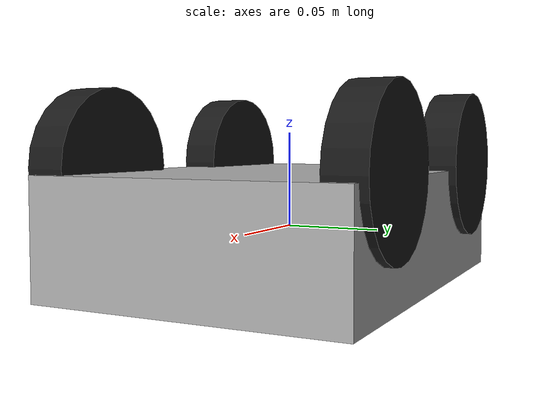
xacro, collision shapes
<?xml version="1.0"?>
<robot name="mentor_pi_hardwares_mecanum" xmlns:xacro="http://www.ros.org/wiki/xacro">

  <xacro:arg name="robot_name" default="mentor_pi"/>
  <xacro:arg name="feedback_timeout_ms" default="100"/>

  <xacro:include filename="$(find mentor_pi_hardwares)/config/mecanum/description.urdf.xacro"/>
  <xacro:include filename="$(find mentor_pi_hardwares)/config/mecanum/ros2_control.xacro"/>

  <xacro:mecanum_car/>
  <xacro:mecanum_control robot_name="$(arg robot_name)"
                         feedback_timeout_ms="$(arg feedback_timeout_ms)"/>

</robot>

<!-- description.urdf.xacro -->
<robot name="mentor_pi_mecanum" xmlns:xacro="http://www.ros.org/wiki/xacro">

  <material name="mentor_pi_gray">
    <color rgba="0.7 0.7 0.7 1.0"/>
  </material>
  <material name="mentor_pi_black">
    <color rgba="0.1 0.1 0.1 1.0"/>
  </material>

  <xacro:macro name="mecanum_car" params="frame_prefix:=''">
    <link name="${frame_prefix}base_footprint"/>

    <link name="${frame_prefix}base_link">
      <inertial>
        <origin xyz="0 0 0.025" rpy="0 0 0"/>
        <mass value="1.0"/>
        <inertia ixx="0.01" ixy="0" ixz="0" iyy="0.01" iyz="0" izz="0.02"/>
      </inertial>
      <visual>
        <origin xyz="0 0 0.050" rpy="-1.5707963267948966 0 0"/>
        <geometry>
          <mesh filename="package://mentor_pi_hardwares/config/mecanum/meshes/base_link.stl"/>
        </geometry>
        <material name="mentor_pi_gray"/>
      </visual>
      <visual>
        <origin xyz="0.064015 -0.00013463 0.101155" rpy="-1.5707963267948966 0 0"/>
        <geometry>
          <mesh filename="package://mentor_pi_hardwares/config/mecanum/meshes/cam_link.stl"/>
        </geometry>
        <material name="mentor_pi_black"/>
      </visual>
      <visual>
        <origin xyz="-0.0096019 -0.00008533 0.142501" rpy="-1.5707963267948966 0 0"/>
        <geometry>
          <mesh filename="package://mentor_pi_hardwares/config/mecanum/meshes/lidar_link.stl"/>
        </geometry>
        <material name="mentor_pi_black"/>
      </visual>
      <collision>
        <geometry>
          <box size="0.22 0.16 0.06"/>
        </geometry>
      </collision>
    </link>

    <joint name="base_footprint_joint" type="fixed">
      <parent link="${frame_prefix}base_footprint"/>
      <child link="${frame_prefix}base_link"/>
      <origin xyz="0 0 0" rpy="0 0 0"/>
    </joint>

    <link name="${frame_prefix}wheel_left_front_link">
      <visual>
        <origin xyz="0 0 0" rpy="-1.5707963267948966 0 0"/>
        <geometry>
          <mesh filename="package://mentor_pi_hardwares/config/mecanum/meshes/wheel_left_front_link.stl"/>
        </geometry>
        <material name="mentor_pi_black"/>
      </visual>
      <collision>
        <origin xyz="0 0 0" rpy="-1.5707963267948966 0 0"/>
        <geometry><cylinder radius="0.04" length="0.02"/></geometry>
      </collision>
    </link>
    <joint name="wheel_left_front_joint" type="continuous">
      <parent link="${frame_prefix}base_link"/>
      <child link="${frame_prefix}wheel_left_front_link"/>
      <origin xyz="0.065812864 0.074187136 0.0325" rpy="0 0 0"/>
      <axis xyz="0 1 0"/>
    </joint>

    <link name="${frame_prefix}wheel_right_front_link">
      <visual>
        <origin xyz="0 0 0" rpy="-1.5707963267948966 0 0"/>
        <geometry>
          <mesh filename="package://mentor_pi_hardwares/config/mecanum/meshes/wheel_right_front_link.stl"/>
        </geometry>
        <material name="mentor_pi_black"/>
      </visual>
      <collision>
        <origin xyz="0 0 0" rpy="-1.5707963267948966 0 0"/>
        <geometry><cylinder radius="0.04" length="0.02"/></geometry>
      </collision>
    </link>
    <joint name="wheel_right_front_joint" type="continuous">
      <parent link="${frame_prefix}base_link"/>
      <child link="${frame_prefix}wheel_right_front_link"/>
      <origin xyz="0.065812864 -0.074187136 0.0325" rpy="0 0 0"/>
      <axis xyz="0 1 0"/>
    </joint>

    <link name="${frame_prefix}wheel_left_rear_link">
      <visual>
        <origin xyz="0 0 0" rpy="-1.5707963267948966 0 0"/>
        <geometry>
          <mesh filename="package://mentor_pi_hardwares/config/mecanum/meshes/wheel_left_rear_link.stl"/>
        </geometry>
        <material name="mentor_pi_black"/>
      </visual>
      <collision>
        <origin xyz="0 0 0" rpy="-1.5707963267948966 0 0"/>
        <geometry><cylinder radius="0.04" length="0.02"/></geometry>
      </collision>
    </link>
    <joint name="wheel_left_rear_joint" type="continuous">
      <parent link="${frame_prefix}base_link"/>
      <child link="${frame_prefix}wheel_left_rear_link"/>
      <origin xyz="-0.065812864 0.074187136 0.0325" rpy="0 0 0"/>
      <axis xyz="0 1 0"/>
    </joint>

    <link name="${frame_prefix}wheel_right_rear_link">
      <visual>
        <origin xyz="0 0 0" rpy="-1.5707963267948966 0 0"/>
        <geometry>
          <mesh filename="package://mentor_pi_hardwares/config/mecanum/meshes/wheel_right_rear_link.stl"/>
        </geometry>
        <material name="mentor_pi_black"/>
      </visual>
      <collision>
        <origin xyz="0 0 0" rpy="-1.5707963267948966 0 0"/>
        <geometry><cylinder radius="0.04" length="0.02"/></geometry>
      </collision>
    </link>
    <joint name="wheel_right_rear_joint" type="continuous">
      <parent link="${frame_prefix}base_link"/>
      <child link="${frame_prefix}wheel_right_rear_link"/>
      <origin xyz="-0.065812864 -0.074187136 0.0325" rpy="0 0 0"/>
      <axis xyz="0 1 0"/>
    </joint>

    <link name="${frame_prefix}imu_link"/>
    <joint name="imu_joint" type="fixed">
      <parent link="${frame_prefix}base_link"/>
      <child link="${frame_prefix}imu_link"/>
      <origin xyz="0 0 0.05" rpy="0 0 0"/>
    </joint>
  </xacro:macro>

</robot>
